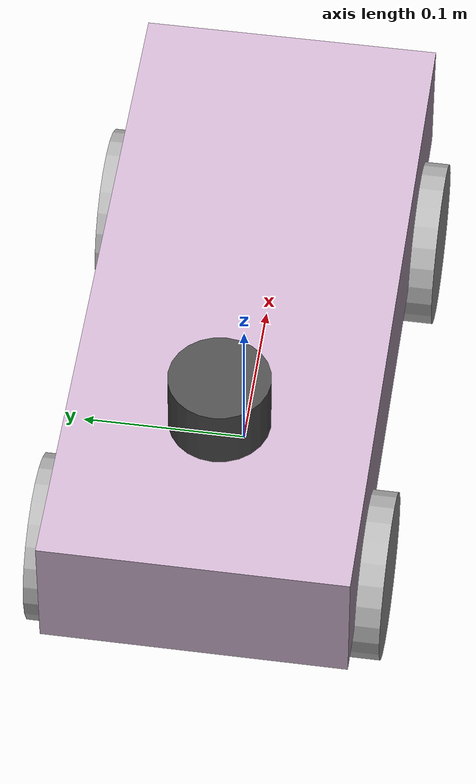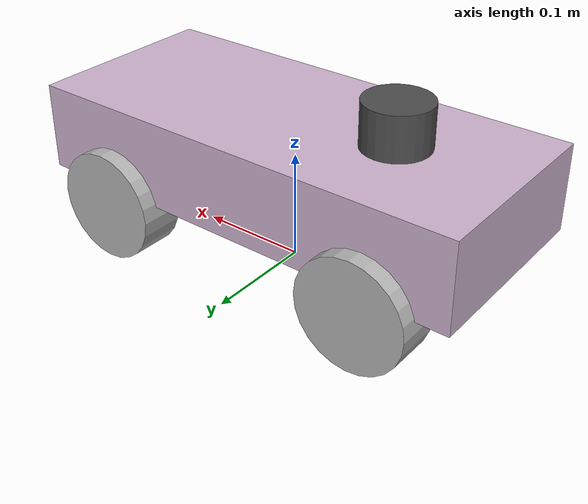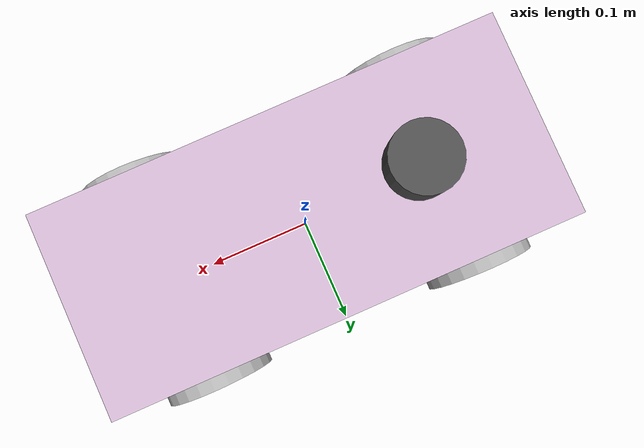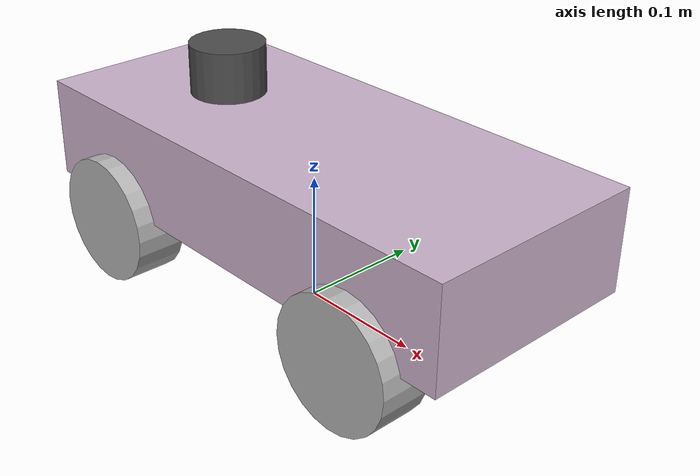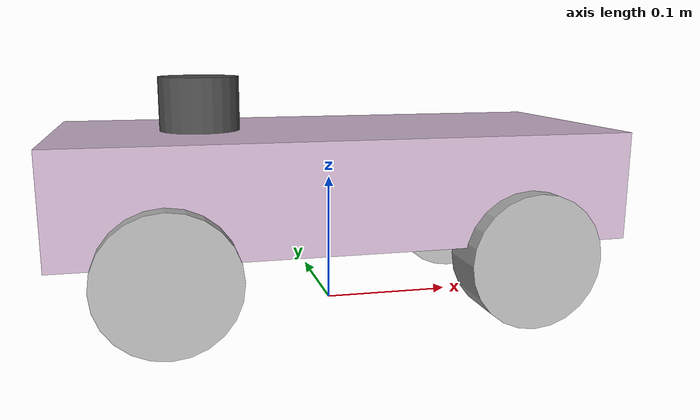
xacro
<?xml version="1.0"?>
<!-- https://docs.nav2.org/setup_guides/urdf/setup_urdf.html#writing-the-urdf -->
<robot name="rutler" xmlns:xacro="http://www.ros.org/wiki/xacro">

    <xacro:property name="wheel_radius" value="0.05"/>
    <xacro:property name="wheel_width" value="0.04"/>
    <link name="base_link">
        <visual>
            <geometry>
                <box size="0.415 0.18 0.08"/>
            </geometry>
            <material name="whatever">
                <color rgba="0.8 0.7 0.8 1" />
            </material>
        </visual>
    </link>

    <link name="origo"/>
    <joint name="base_joint" type="fixed">
        <child link="base_link"/>
        <parent link="origo"/>
        <origin xyz="0.0 0.0 ${wheel_radius*2}" rpy="0 0 0"/>
    </joint>

    <xacro:macro name="wheel" params="prefix x_reflect y_reflect">
        <link name="${prefix}_link">
            <visual>
                <origin xyz="0 0 0" rpy="${pi/2} 0 0"/>
                <geometry>
                    <cylinder radius="${wheel_radius}" length="${wheel_width}"/>
                </geometry>
                <material name="gray">
                    <color rgba="0.7 0.7 0.7 1.0"/>
                </material>
            </visual>
        </link>
        <!--joint name="${prefix}_joint" type="continuous"-->
        <joint name="${prefix}_joint" type="fixed">
            <parent link="base_link"/>
            <child link="${prefix}_link"/>
            <origin xyz="${x_reflect*0.26/2} ${y_reflect*0.17/2} -0.05" rpy="0 0 0"/>
            <!--axis xyz="0 1 0"/-->
        </joint>
    </xacro:macro>

    <xacro:wheel prefix="whl_fr" x_reflect="1" y_reflect="-1" />
    <xacro:wheel prefix="whl_fl" x_reflect="1" y_reflect="1" />
    <xacro:wheel prefix="whl_br" x_reflect="-1" y_reflect="-1" />
    <xacro:wheel prefix="whl_bl" x_reflect="-1" y_reflect="1" />

    <link name="laser">
        <visual>
            <origin xyz="0 0 0" rpy="0 0 0"/>
            <geometry>
                <cylinder radius="0.03" length="0.04"/>
            </geometry>
            <material name="black">
                <color rgba="0.3 0.3 0.3 1.0"/>
            </material>
        </visual>
    </link>
    <joint name="laser_joint" type="fixed">
        <parent link="base_link"/>
        <child link="laser"/>
        <origin xyz="-0.10 0.0 0.06" rpy="0 0 0"/>
    </joint>

</robot>
